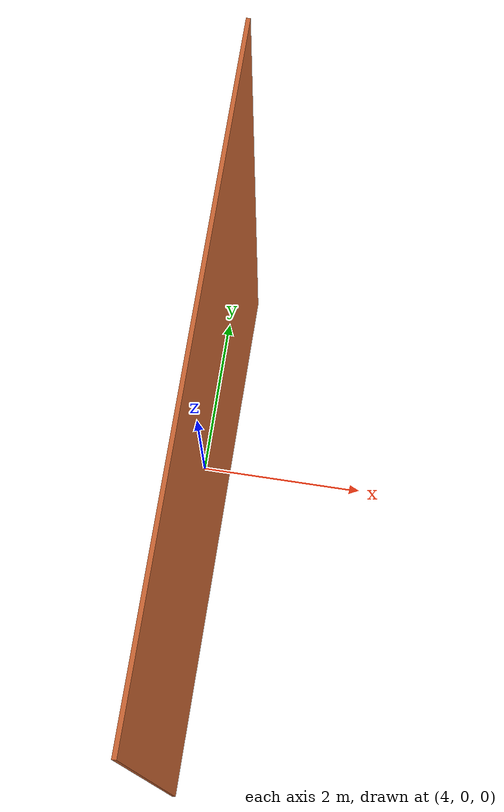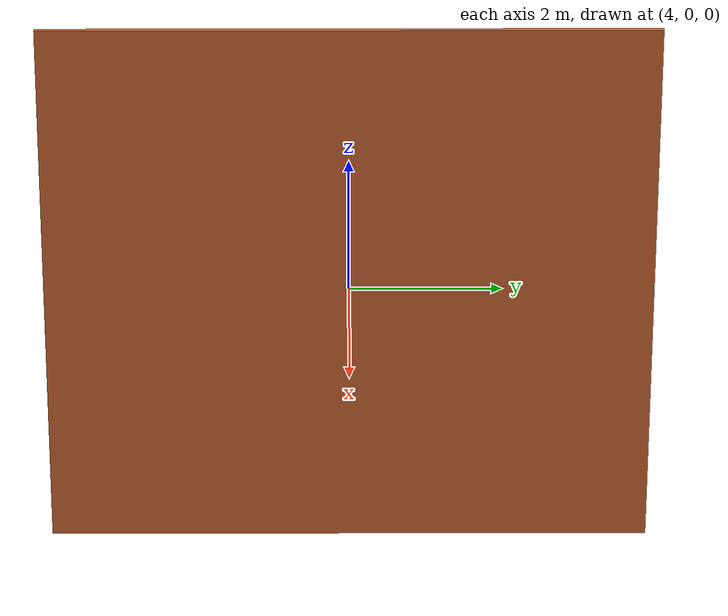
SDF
<?xml version='1.0' encoding='utf-8'?>
<sdf version="1.10">
  <world name="camera_parameter_validation">
    <physics name="1ms" type="ignored">
      <max_step_size>0.001</max_step_size>
      <real_time_factor>1.0</real_time_factor>
    </physics>
    <plugin filename="gz-sim-physics-system" name="gz::sim::systems::Physics" />
    <plugin filename="gz-sim-user-commands-system" name="gz::sim::systems::UserCommands" />
    <plugin filename="gz-sim-scene-broadcaster-system" name="gz::sim::systems::SceneBroadcaster" />
    <plugin filename="gz-sim-sensors-system" name="gz::sim::systems::Sensors">
      <render_engine>ogre2</render_engine>
    </plugin>
    <scene>
      <ambient>0.6 0.6 0.6 1</ambient>
      <background>0.05 0.05 0.05 1</background>
      <shadows>false</shadows>
    </scene>
    <light type="directional" name="validation_light">
      <pose>0 0 5 0 0 0</pose>
      <diffuse>1 1 1 1</diffuse>
      <specular>0 0 0 1</specular>
      <direction>-1 0 -0.2</direction>
      <cast_shadows>false</cast_shadows>
    </light>
    <model name="planar_target">
      <static>true</static>
      <pose>4 0 0 0 0 0</pose>
      <link name="target_link">
        <collision name="target_collision">
          <geometry>
            <box>
              <size>0.05 8 8</size>
            </box>
          </geometry>
        </collision>
        <visual name="target_visual">
          <geometry>
            <box>
              <size>0.05 8 8</size>
            </box>
          </geometry>
          <material>
            <ambient>0.8 0.4 0.2 1</ambient>
            <diffuse>0.8 0.4 0.2 1</diffuse>
            <specular>0 0 0 1</specular>
          </material>
        </visual>
      </link>
    </model>
    <model name="uc_att_b">
      <pose>0 0 0 0 0 0</pose>
      <static>true</static>
      <link name="camera_link">
        <sensor name="uc_att_b" type="rgbd_camera">
          <update_rate>10</update_rate>
          <visualize>false</visualize>
          <always_on>true</always_on>
          <topic>uc_att_b</topic>
          <camera>
            <horizontal_fov>1.05</horizontal_fov>
            <image>
              <width>320</width>
              <height>240</height>
            </image>
            <clip>
              <near>0.1</near>
              <far>10.0</far>
            </clip>
          </camera>
          <plugin filename="UnderwaterCamera" name="dave_gz_sensor_plugins::UnderwaterCamera">
            <attenuationB>0.8</attenuationB>
          </plugin>
        </sensor>
      </link>
    </model>
    <model name="uc_att_g">
      <pose>0 0 0 0 0 0</pose>
      <static>true</static>
      <link name="camera_link">
        <sensor name="uc_att_g" type="rgbd_camera">
          <update_rate>10</update_rate>
          <visualize>false</visualize>
          <always_on>true</always_on>
          <topic>uc_att_g</topic>
          <camera>
            <horizontal_fov>1.05</horizontal_fov>
            <image>
              <width>320</width>
              <height>240</height>
            </image>
            <clip>
              <near>0.1</near>
              <far>10.0</far>
            </clip>
          </camera>
          <plugin filename="UnderwaterCamera" name="dave_gz_sensor_plugins::UnderwaterCamera">
            <attenuationG>0.8</attenuationG>
          </plugin>
        </sensor>
      </link>
    </model>
    <model name="uc_att_r">
      <pose>0 0 0 0 0 0</pose>
      <static>true</static>
      <link name="camera_link">
        <sensor name="uc_att_r" type="rgbd_camera">
          <update_rate>10</update_rate>
          <visualize>false</visualize>
          <always_on>true</always_on>
          <topic>uc_att_r</topic>
          <camera>
            <horizontal_fov>1.05</horizontal_fov>
            <image>
              <width>320</width>
              <height>240</height>
            </image>
            <clip>
              <near>0.1</near>
              <far>10.0</far>
            </clip>
          </camera>
          <plugin filename="UnderwaterCamera" name="dave_gz_sensor_plugins::UnderwaterCamera">
            <attenuationR>0.8</attenuationR>
          </plugin>
        </sensor>
      </link>
    </model>
    <model name="uc_bg_b">
      <pose>0 0 0 0 0 0</pose>
      <static>true</static>
      <link name="camera_link">
        <sensor name="uc_bg_b" type="rgbd_camera">
          <update_rate>10</update_rate>
          <visualize>false</visualize>
          <always_on>true</always_on>
          <topic>uc_bg_b</topic>
          <camera>
            <horizontal_fov>1.05</horizontal_fov>
            <image>
              <width>320</width>
              <height>240</height>
            </image>
            <clip>
              <near>0.1</near>
              <far>10.0</far>
            </clip>
          </camera>
          <plugin filename="UnderwaterCamera" name="dave_gz_sensor_plugins::UnderwaterCamera">
            <attenuationR>0.8</attenuationR>
            <attenuationG>0.8</attenuationG>
            <attenuationB>0.8</attenuationB>
            <backgroundB>47</backgroundB>
          </plugin>
        </sensor>
      </link>
    </model>
    <model name="uc_bg_base">
      <pose>0 0 0 0 0 0</pose>
      <static>true</static>
      <link name="camera_link">
        <sensor name="uc_bg_base" type="rgbd_camera">
          <update_rate>10</update_rate>
          <visualize>false</visualize>
          <always_on>true</always_on>
          <topic>uc_bg_base</topic>
          <camera>
            <horizontal_fov>1.05</horizontal_fov>
            <image>
              <width>320</width>
              <height>240</height>
            </image>
            <clip>
              <near>0.1</near>
              <far>10.0</far>
            </clip>
          </camera>
          <plugin filename="UnderwaterCamera" name="dave_gz_sensor_plugins::UnderwaterCamera">
            <attenuationR>0.8</attenuationR>
            <attenuationG>0.8</attenuationG>
            <attenuationB>0.8</attenuationB>
          </plugin>
        </sensor>
      </link>
    </model>
    <model name="uc_bg_g">
      <pose>0 0 0 0 0 0</pose>
      <static>true</static>
      <link name="camera_link">
        <sensor name="uc_bg_g" type="rgbd_camera">
          <update_rate>10</update_rate>
          <visualize>false</visualize>
          <always_on>true</always_on>
          <topic>uc_bg_g</topic>
          <camera>
            <horizontal_fov>1.05</horizontal_fov>
            <image>
              <width>320</width>
              <height>240</height>
            </image>
            <clip>
              <near>0.1</near>
              <far>10.0</far>
            </clip>
          </camera>
          <plugin filename="UnderwaterCamera" name="dave_gz_sensor_plugins::UnderwaterCamera">
            <attenuationR>0.8</attenuationR>
            <attenuationG>0.8</attenuationG>
            <attenuationB>0.8</attenuationB>
            <backgroundG>107</backgroundG>
          </plugin>
        </sensor>
      </link>
    </model>
    <model name="uc_bg_r">
      <pose>0 0 0 0 0 0</pose>
      <static>true</static>
      <link name="camera_link">
        <sensor name="uc_bg_r" type="rgbd_camera">
          <update_rate>10</update_rate>
          <visualize>false</visualize>
          <always_on>true</always_on>
          <topic>uc_bg_r</topic>
          <camera>
            <horizontal_fov>1.05</horizontal_fov>
            <image>
              <width>320</width>
              <height>240</height>
            </image>
            <clip>
              <near>0.1</near>
              <far>10.0</far>
            </clip>
          </camera>
          <plugin filename="UnderwaterCamera" name="dave_gz_sensor_plugins::UnderwaterCamera">
            <attenuationR>0.8</attenuationR>
            <attenuationG>0.8</attenuationG>
            <attenuationB>0.8</attenuationB>
            <backgroundR>85</backgroundR>
          </plugin>
        </sensor>
      </link>
    </model>
    <model name="uc_no_effect">
      <pose>0 0 0 0 0 0</pose>
      <static>true</static>
      <link name="camera_link">
        <sensor name="uc_no_effect" type="rgbd_camera">
          <update_rate>10</update_rate>
          <visualize>false</visualize>
          <always_on>true</always_on>
          <topic>uc_no_effect</topic>
          <camera>
            <horizontal_fov>1.05</horizontal_fov>
            <image>
              <width>320</width>
              <height>240</height>
            </image>
            <clip>
              <near>0.1</near>
              <far>10.0</far>
            </clip>
          </camera>
          <plugin filename="UnderwaterCamera" name="dave_gz_sensor_plugins::UnderwaterCamera">

        </plugin>
        </sensor>
      </link>
    </model>
    <model name="uc_range_1m">
      <pose>3 0 0 0 0 0</pose>
      <static>true</static>
      <link name="camera_link">
        <sensor name="uc_range_1m" type="rgbd_camera">
          <update_rate>10</update_rate>
          <visualize>false</visualize>
          <always_on>true</always_on>
          <topic>uc_range_1m</topic>
          <camera>
            <horizontal_fov>1.05</horizontal_fov>
            <image>
              <width>320</width>
              <height>240</height>
            </image>
            <clip>
              <near>0.1</near>
              <far>10.0</far>
            </clip>
          </camera>
          <plugin filename="UnderwaterCamera" name="dave_gz_sensor_plugins::UnderwaterCamera">
            <attenuationR>0.2</attenuationR>
            <attenuationG>0.2</attenuationG>
            <attenuationB>0.2</attenuationB>
          </plugin>
        </sensor>
      </link>
    </model>
    <model name="uc_range_2m">
      <pose>2 0 0 0 0 0</pose>
      <static>true</static>
      <link name="camera_link">
        <sensor name="uc_range_2m" type="rgbd_camera">
          <update_rate>10</update_rate>
          <visualize>false</visualize>
          <always_on>true</always_on>
          <topic>uc_range_2m</topic>
          <camera>
            <horizontal_fov>1.05</horizontal_fov>
            <image>
              <width>320</width>
              <height>240</height>
            </image>
            <clip>
              <near>0.1</near>
              <far>10.0</far>
            </clip>
          </camera>
          <plugin filename="UnderwaterCamera" name="dave_gz_sensor_plugins::UnderwaterCamera">
            <attenuationR>0.2</attenuationR>
            <attenuationG>0.2</attenuationG>
            <attenuationB>0.2</attenuationB>
          </plugin>
        </sensor>
      </link>
    </model>
    <model name="uc_range_4m">
      <pose>0 0 0 0 0 0</pose>
      <static>true</static>
      <link name="camera_link">
        <sensor name="uc_range_4m" type="rgbd_camera">
          <update_rate>10</update_rate>
          <visualize>false</visualize>
          <always_on>true</always_on>
          <topic>uc_range_4m</topic>
          <camera>
            <horizontal_fov>1.05</horizontal_fov>
            <image>
              <width>320</width>
              <height>240</height>
            </image>
            <clip>
              <near>0.1</near>
              <far>10.0</far>
            </clip>
          </camera>
          <plugin filename="UnderwaterCamera" name="dave_gz_sensor_plugins::UnderwaterCamera">
            <attenuationR>0.2</attenuationR>
            <attenuationG>0.2</attenuationG>
            <attenuationB>0.2</attenuationB>
          </plugin>
        </sensor>
      </link>
    </model>
    <model name="uc_range_6m">
      <pose>-2 0 0 0 0 0</pose>
      <static>true</static>
      <link name="camera_link">
        <sensor name="uc_range_6m" type="rgbd_camera">
          <update_rate>10</update_rate>
          <visualize>false</visualize>
          <always_on>true</always_on>
          <topic>uc_range_6m</topic>
          <camera>
            <horizontal_fov>1.05</horizontal_fov>
            <image>
              <width>320</width>
              <height>240</height>
            </image>
            <clip>
              <near>0.1</near>
              <far>10.0</far>
            </clip>
          </camera>
          <plugin filename="UnderwaterCamera" name="dave_gz_sensor_plugins::UnderwaterCamera">
            <attenuationR>0.2</attenuationR>
            <attenuationG>0.2</attenuationG>
            <attenuationB>0.2</attenuationB>
          </plugin>
        </sensor>
      </link>
    </model>
  </world>
</sdf>
